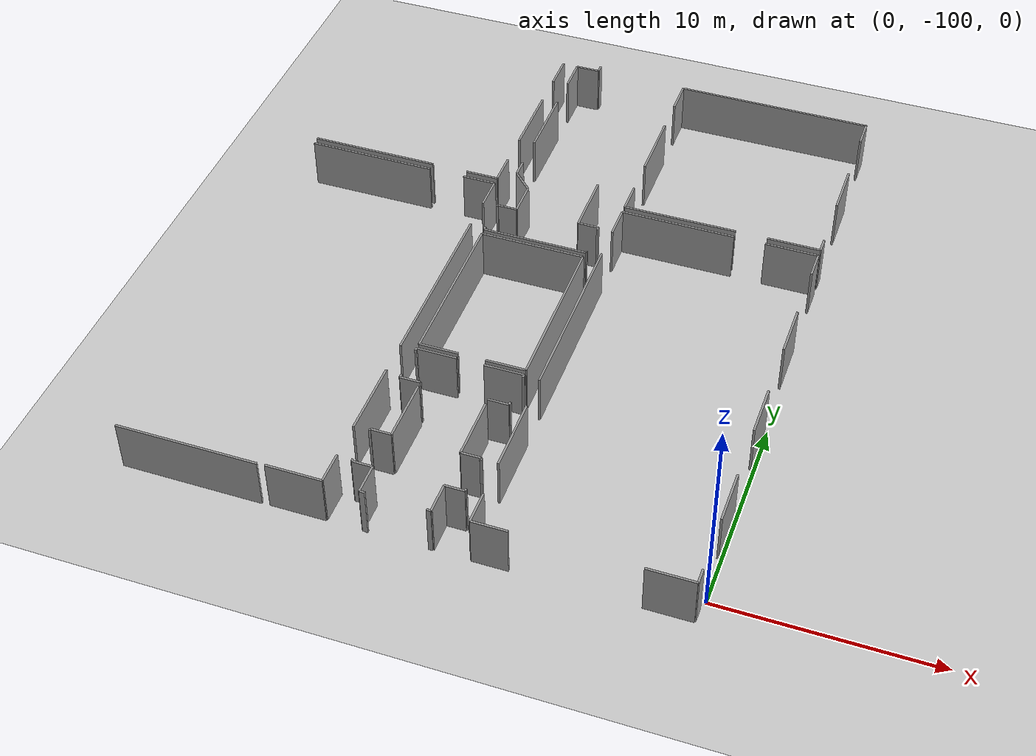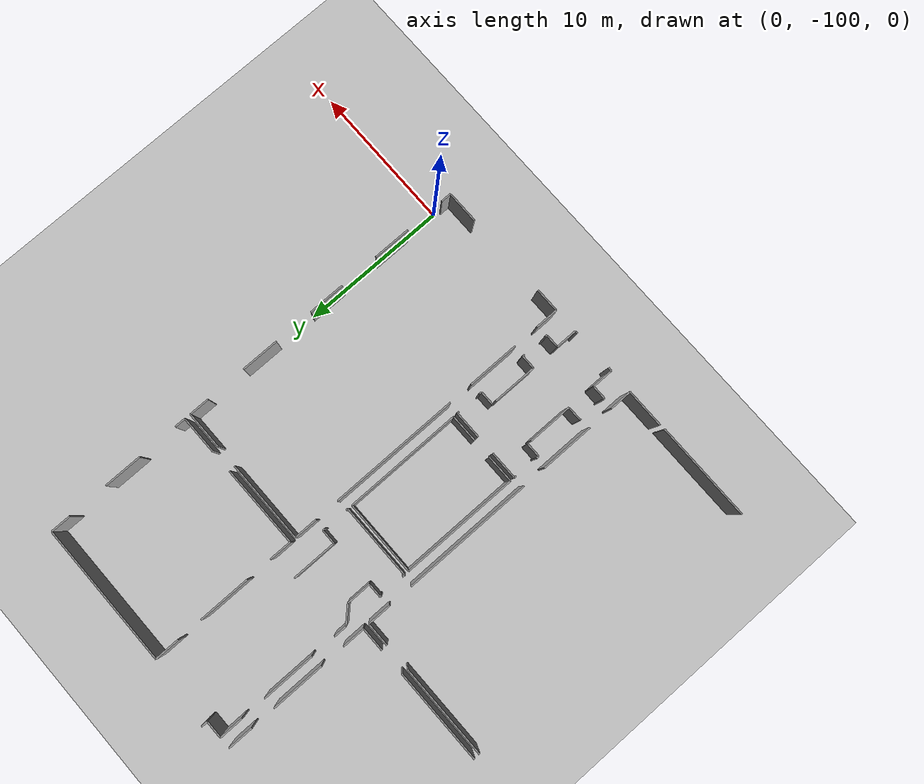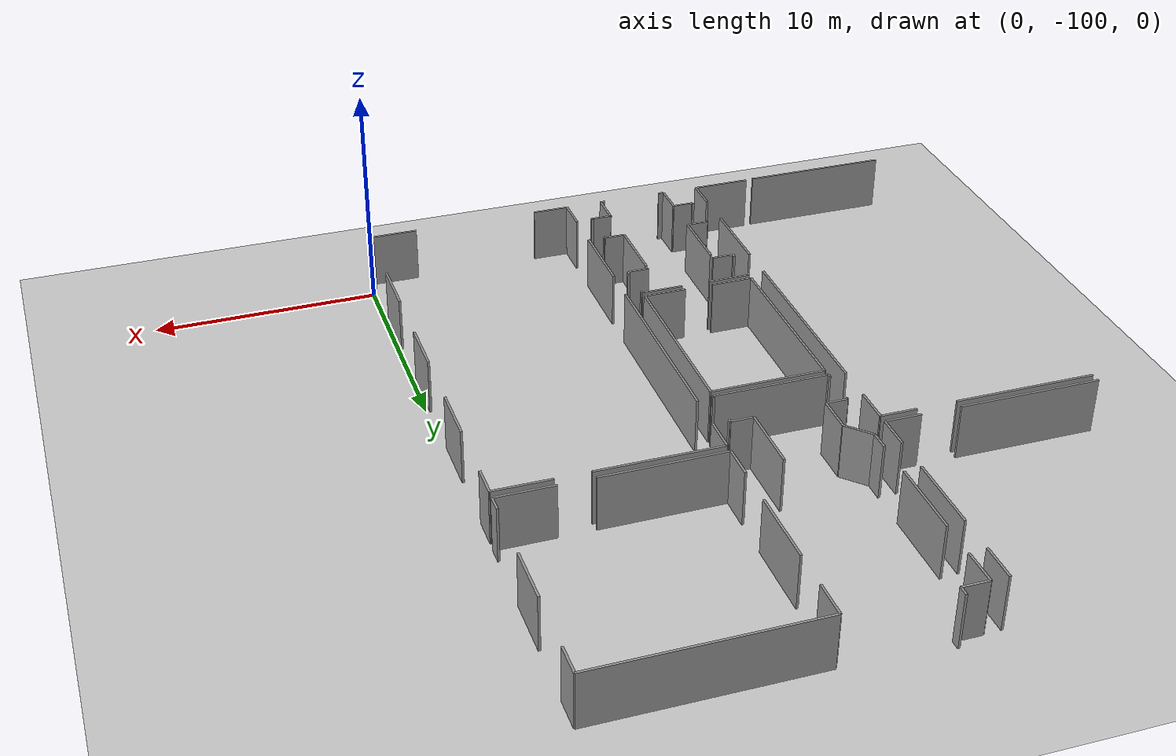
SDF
<sdf version="1.6">
 <world name="default">
  <model name="ground_plane">
   <static>1</static>
   <link name="link">
    <collision name="collision">
     <geometry><plane><normal>0 0 1</normal><size>100 100</size></plane></geometry>
     <surface><friction><ode><mu>100</mu><mu2>50</mu2></ode></friction></surface>
    </collision>
    <visual name="visual">
     <cast_shadows>0</cast_shadows>
     <geometry><plane><normal>0 0 1</normal><size>100 100</size></plane></geometry>
     <material>
      <script><uri>file://media/materials/scripts/gazebo.material</uri><name>Gazebo/Grey</name></script>
     </material>
    </visual>
   </link>
  </model>
  <model name="0510045925_40">
   <static>1</static>
   <link name="Wall_1464">
    <collision name="Wall_1464_Collision">
     <geometry><box><size>1.68219080734 0.1 2.5</size></box></geometry>
     <pose>0.84109540367 0 1.25 0 0 0</pose>
    </collision>
    <visual name="Wall_1464_Visual">
     <pose>0.84109540367 0 1.25 0 0 0</pose>
     <geometry><box><size>1.68219080734 0.1 2.5</size></box></geometry>
     <material>
      <script><uri>file://media/materials/scripts/gazebo.material</uri><name>Gazebo/Grey</name></script>
      <ambient>1 1 1 1</ambient>
     </material>
    </visual>
    <pose>117.653156011 -171.145326261 0 0 0 -1.57079632679</pose>
   </link>
   <link name="Wall_1465">
    <collision name="Wall_1465_Collision">
     <geometry><box><size>3.55879292404 0.1 2.5</size></box></geometry>
     <pose>1.77939646202 0 1.25 0 0 0</pose>
    </collision>
    <visual name="Wall_1465_Visual">
     <pose>1.77939646202 0 1.25 0 0 0</pose>
     <geometry><box><size>3.55879292404 0.1 2.5</size></box></geometry>
     <material>
      <script><uri>file://media/materials/scripts/gazebo.material</uri><name>Gazebo/Grey</name></script>
      <ambient>1 1 1 1</ambient>
     </material>
    </visual>
    <pose>117.653156011 -174.491180427 0 0 0 -1.57079632679</pose>
   </link>
   <link name="Wall_1466">
    <collision name="Wall_1466_Collision">
     <geometry><box><size>1.52737240172 0.1 2.5</size></box></geometry>
     <pose>0.763686200858 0 1.25 0 0 0</pose>
    </collision>
    <visual name="Wall_1466_Visual">
     <pose>0.763686200858 0 1.25 0 0 0</pose>
     <geometry><box><size>1.52737240172 0.1 2.5</size></box></geometry>
     <material>
      <script><uri>file://media/materials/scripts/gazebo.material</uri><name>Gazebo/Grey</name></script>
      <ambient>1 1 1 1</ambient>
     </material>
    </visual>
    <pose>117.653156011 -179.696124464 0 0 0 -1.57079632679</pose>
   </link>
   <link name="Wall_1467">
    <collision name="Wall_1467_Collision">
     <geometry><box><size>1.60021319256 0.1 2.5</size></box></geometry>
     <pose>0.800106596279 0 1.25 0 0 0</pose>
    </collision>
    <visual name="Wall_1467_Visual">
     <pose>0.800106596279 0 1.25 0 0 0</pose>
     <geometry><box><size>1.60021319256 0.1 2.5</size></box></geometry>
     <material>
      <script><uri>file://media/materials/scripts/gazebo.material</uri><name>Gazebo/Grey</name></script>
      <ambient>1 1 1 1</ambient>
     </material>
    </visual>
    <pose>117.653156011 -181.223496866 0 0 0 3.14159265359</pose>
   </link>
   <link name="Wall_1468">
    <collision name="Wall_1468_Collision">
     <geometry><box><size>6.24349635796 0.1 2.5</size></box></geometry>
     <pose>3.12174817898 0 1.25 0 0 0</pose>
    </collision>
    <visual name="Wall_1468_Visual">
     <pose>3.12174817898 0 1.25 0 0 0</pose>
     <geometry><box><size>6.24349635796 0.1 2.5</size></box></geometry>
     <material>
      <script><uri>file://media/materials/scripts/gazebo.material</uri><name>Gazebo/Grey</name></script>
      <ambient>1 1 1 1</ambient>
     </material>
    </visual>
    <pose>114.296642217 -181.223496866 0 0 0 3.14159265359</pose>
   </link>
   <link name="Wall_1469">
    <collision name="Wall_1469_Collision">
     <geometry><box><size>1.17306667343 0.1 2.5</size></box></geometry>
     <pose>0.586533336717 0 1.25 0 0 0</pose>
    </collision>
    <visual name="Wall_1469_Visual">
     <pose>0.586533336717 0 1.25 0 0 0</pose>
     <geometry><box><size>1.17306667343 0.1 2.5</size></box></geometry>
     <material>
      <script><uri>file://media/materials/scripts/gazebo.material</uri><name>Gazebo/Grey</name></script>
      <ambient>1 1 1 1</ambient>
     </material>
    </visual>
    <pose>118.4122738 -171.155985889 0 0 0 0.0</pose>
   </link>
   <link name="Wall_1470">
    <collision name="Wall_1470_Collision">
     <geometry><box><size>0.42029390117 0.1 2.5</size></box></geometry>
     <pose>0.210146950585 0 1.25 0 0 0</pose>
    </collision>
    <visual name="Wall_1470_Visual">
     <pose>0.210146950585 0 1.25 0 0 0</pose>
     <geometry><box><size>0.42029390117 0.1 2.5</size></box></geometry>
     <material>
      <script><uri>file://media/materials/scripts/gazebo.material</uri><name>Gazebo/Grey</name></script>
      <ambient>1 1 1 1</ambient>
     </material>
    </visual>
    <pose>119.585340474 -171.155985889 0 0 0 1.57079632679</pose>
   </link>
   <link name="Wall_1474">
    <collision name="Wall_1474_Collision">
     <geometry><box><size>3.02682673029 0.1 2.5</size></box></geometry>
     <pose>1.51341336514 0 1.25 0 0 0</pose>
    </collision>
    <visual name="Wall_1474_Visual">
     <pose>1.51341336514 0 1.25 0 0 0</pose>
     <geometry><box><size>3.02682673029 0.1 2.5</size></box></geometry>
     <material>
      <script><uri>file://media/materials/scripts/gazebo.material</uri><name>Gazebo/Grey</name></script>
      <ambient>1 1 1 1</ambient>
     </material>
    </visual>
    <pose>122.455064592 -180.076825461 0 0 0 -1.57079632679</pose>
   </link>
   <link name="Wall_1475">
    <collision name="Wall_1475_Collision">
     <geometry><box><size>1.00048222126 0.1 2.5</size></box></geometry>
     <pose>0.500241110632 0 1.25 0 0 0</pose>
    </collision>
    <visual name="Wall_1475_Visual">
     <pose>0.500241110632 0 1.25 0 0 0</pose>
     <geometry><box><size>1.00048222126 0.1 2.5</size></box></geometry>
     <material>
      <script><uri>file://media/materials/scripts/gazebo.material</uri><name>Gazebo/Grey</name></script>
      <ambient>1 1 1 1</ambient>
     </material>
    </visual>
    <pose>122.455064592 -183.103652192 0 0 0 0.0</pose>
   </link>
   <link name="Wall_1476">
    <collision name="Wall_1476_Collision">
     <geometry><box><size>0.158625415599 0.1 2.5</size></box></geometry>
     <pose>0.0793127077993 0 1.25 0 0 0</pose>
    </collision>
    <visual name="Wall_1476_Visual">
     <pose>0.0793127077993 0 1.25 0 0 0</pose>
     <geometry><box><size>0.158625415599 0.1 2.5</size></box></geometry>
     <material>
      <script><uri>file://media/materials/scripts/gazebo.material</uri><name>Gazebo/Grey</name></script>
      <ambient>1 1 1 1</ambient>
     </material>
    </visual>
    <pose>123.455546814 -183.103652192 0 0 0 -1.57079632679</pose>
   </link>
   <link name="Wall_1477">
    <collision name="Wall_1477_Collision">
     <geometry><box><size>0.123854724499 0.1 2.5</size></box></geometry>
     <pose>0.0619273622497 0 1.25 0 0 0</pose>
    </collision>
    <visual name="Wall_1477_Visual">
     <pose>0.0619273622497 0 1.25 0 0 0</pose>
     <geometry><box><size>0.123854724499 0.1 2.5</size></box></geometry>
     <material>
      <script><uri>file://media/materials/scripts/gazebo.material</uri><name>Gazebo/Grey</name></script>
      <ambient>1 1 1 1</ambient>
     </material>
    </visual>
    <pose>123.455546814 -184.885079059 0 0 0 -1.57079632679</pose>
   </link>
   <link name="Wall_1478">
    <collision name="Wall_1478_Collision">
     <geometry><box><size>5.06941448187 0.1 2.5</size></box></geometry>
     <pose>2.53470724093 0 1.25 0 0 0</pose>
    </collision>
    <visual name="Wall_1478_Visual">
     <pose>2.53470724093 0 1.25 0 0 0</pose>
     <geometry><box><size>5.06941448187 0.1 2.5</size></box></geometry>
     <material>
      <script><uri>file://media/materials/scripts/gazebo.material</uri><name>Gazebo/Grey</name></script>
      <ambient>1 1 1 1</ambient>
     </material>
    </visual>
    <pose>123.455546814 -185.008933783 0 0 0 3.14159265359</pose>
   </link>
   <link name="Wall_1479">
    <collision name="Wall_1479_Collision">
     <geometry><box><size>0.169031242862 0.1 2.5</size></box></geometry>
     <pose>0.0845156214309 0 1.25 0 0 0</pose>
    </collision>
    <visual name="Wall_1479_Visual">
     <pose>0.0845156214309 0 1.25 0 0 0</pose>
     <geometry><box><size>0.169031242862 0.1 2.5</size></box></geometry>
     <material>
      <script><uri>file://media/materials/scripts/gazebo.material</uri><name>Gazebo/Grey</name></script>
      <ambient>1 1 1 1</ambient>
     </material>
    </visual>
    <pose>118.386132332 -185.008933783 0 0 0 1.57079632679</pose>
   </link>
   <link name="Wall_1480">
    <collision name="Wall_1480_Collision">
     <geometry><box><size>0.0997436613284 0.1 2.5</size></box></geometry>
     <pose>0.0498718306642 0 1.25 0 0 0</pose>
    </collision>
    <visual name="Wall_1480_Visual">
     <pose>0.0498718306642 0 1.25 0 0 0</pose>
     <geometry><box><size>0.0997436613284 0.1 2.5</size></box></geometry>
     <material>
      <script><uri>file://media/materials/scripts/gazebo.material</uri><name>Gazebo/Grey</name></script>
      <ambient>1 1 1 1</ambient>
     </material>
    </visual>
    <pose>118.386132332 -183.225476511 0 0 0 1.57079632679</pose>
   </link>
   <link name="Wall_1481">
    <collision name="Wall_1481_Collision">
     <geometry><box><size>0.952513895586 0.1 2.5</size></box></geometry>
     <pose>0.476256947793 0 1.25 0 0 0</pose>
    </collision>
    <visual name="Wall_1481_Visual">
     <pose>0.476256947793 0 1.25 0 0 0</pose>
     <geometry><box><size>0.952513895586 0.1 2.5</size></box></geometry>
     <material>
      <script><uri>file://media/materials/scripts/gazebo.material</uri><name>Gazebo/Grey</name></script>
      <ambient>1 1 1 1</ambient>
     </material>
    </visual>
    <pose>118.386132332 -183.125732849 0 0 0 0.0</pose>
   </link>
   <link name="Wall_1482">
    <collision name="Wall_1482_Collision">
     <geometry><box><size>1.64589731225 0.1 2.5</size></box></geometry>
     <pose>0.822948656125 0 1.25 0 0 0</pose>
    </collision>
    <visual name="Wall_1482_Visual">
     <pose>0.822948656125 0 1.25 0 0 0</pose>
     <geometry><box><size>1.64589731225 0.1 2.5</size></box></geometry>
     <material>
      <script><uri>file://media/materials/scripts/gazebo.material</uri><name>Gazebo/Grey</name></script>
      <ambient>1 1 1 1</ambient>
     </material>
    </visual>
    <pose>119.338646227 -183.125732849 0 0 0 1.57079632679</pose>
   </link>
   <link name="Wall_1483">
    <collision name="Wall_1483_Collision">
     <geometry><box><size>1.31180980662 0.1 2.5</size></box></geometry>
     <pose>0.655904903312 0 1.25 0 0 0</pose>
    </collision>
    <visual name="Wall_1483_Visual">
     <pose>0.655904903312 0 1.25 0 0 0</pose>
     <geometry><box><size>1.31180980662 0.1 2.5</size></box></geometry>
     <material>
      <script><uri>file://media/materials/scripts/gazebo.material</uri><name>Gazebo/Grey</name></script>
      <ambient>1 1 1 1</ambient>
     </material>
    </visual>
    <pose>119.338646227 -181.479835537 0 0 0 2.34347113795</pose>
   </link>
   <link name="Wall_1484">
    <collision name="Wall_1484_Collision">
     <geometry><box><size>0.865967868836 0.1 2.5</size></box></geometry>
     <pose>0.432983934418 0 1.25 0 0 0</pose>
    </collision>
    <visual name="Wall_1484_Visual">
     <pose>0.432983934418 0 1.25 0 0 0</pose>
     <geometry><box><size>0.865967868836 0.1 2.5</size></box></geometry>
     <material>
      <script><uri>file://media/materials/scripts/gazebo.material</uri><name>Gazebo/Grey</name></script>
      <ambient>1 1 1 1</ambient>
     </material>
    </visual>
    <pose>118.422933428 -180.540519276 0 0 0 1.57079632679</pose>
   </link>
   <link name="Wall_1485">
    <collision name="Wall_1485_Collision">
     <geometry><box><size>3.5590467247 0.1 2.5</size></box></geometry>
     <pose>1.77952336235 0 1.25 0 0 0</pose>
    </collision>
    <visual name="Wall_1485_Visual">
     <pose>1.77952336235 0 1.25 0 0 0</pose>
     <geometry><box><size>3.5590467247 0.1 2.5</size></box></geometry>
     <material>
      <script><uri>file://media/materials/scripts/gazebo.material</uri><name>Gazebo/Grey</name></script>
      <ambient>1 1 1 1</ambient>
     </material>
    </visual>
    <pose>118.422933428 -177.981700972 0 0 0 1.57079632679</pose>
   </link>
   <link name="Wall_1486">
    <collision name="Wall_1486_Collision">
     <geometry><box><size>1.60913152336 0.1 2.5</size></box></geometry>
     <pose>0.80456576168 0 1.25 0 0 0</pose>
    </collision>
    <visual name="Wall_1486_Visual">
     <pose>0.80456576168 0 1.25 0 0 0</pose>
     <geometry><box><size>1.60913152336 0.1 2.5</size></box></geometry>
     <material>
      <script><uri>file://media/materials/scripts/gazebo.material</uri><name>Gazebo/Grey</name></script>
      <ambient>1 1 1 1</ambient>
     </material>
    </visual>
    <pose>118.422933428 -172.765082105 0 0 0 1.57742083557</pose>
   </link>
   <link name="Wall_1487">
    <collision name="Wall_1487_Collision">
     <geometry><box><size>2.61490825106 0.1 2.5</size></box></geometry>
     <pose>1.30745412553 0 1.25 0 0 0</pose>
    </collision>
    <visual name="Wall_1487_Visual">
     <pose>1.30745412553 0 1.25 0 0 0</pose>
     <geometry><box><size>2.61490825106 0.1 2.5</size></box></geometry>
     <material>
      <script><uri>file://media/materials/scripts/gazebo.material</uri><name>Gazebo/Grey</name></script>
      <ambient>1 1 1 1</ambient>
     </material>
    </visual>
    <pose>115.041039568 -202.100631964 0 0 0 0.0</pose>
   </link>
   <link name="Wall_1488">
    <collision name="Wall_1488_Collision">
     <geometry><box><size>1.50859115251 0.1 2.5</size></box></geometry>
     <pose>0.754295576254 0 1.25 0 0 0</pose>
    </collision>
    <visual name="Wall_1488_Visual">
     <pose>0.754295576254 0 1.25 0 0 0</pose>
     <geometry><box><size>1.50859115251 0.1 2.5</size></box></geometry>
     <material>
      <script><uri>file://media/materials/scripts/gazebo.material</uri><name>Gazebo/Grey</name></script>
      <ambient>1 1 1 1</ambient>
     </material>
    </visual>
    <pose>117.655947819 -202.100631964 0 0 0 1.57079632679</pose>
   </link>
   <link name="Wall_1489">
    <collision name="Wall_1489_Collision">
     <geometry><box><size>3.61970508363 0.1 2.5</size></box></geometry>
     <pose>1.80985254181 0 1.25 0 0 0</pose>
    </collision>
    <visual name="Wall_1489_Visual">
     <pose>1.80985254181 0 1.25 0 0 0</pose>
     <geometry><box><size>3.61970508363 0.1 2.5</size></box></geometry>
     <material>
      <script><uri>file://media/materials/scripts/gazebo.material</uri><name>Gazebo/Grey</name></script>
      <ambient>1 1 1 1</ambient>
     </material>
    </visual>
    <pose>117.655947819 -198.872795107 0 0 0 1.57079632679</pose>
   </link>
   <link name="Wall_1490">
    <collision name="Wall_1490_Collision">
     <geometry><box><size>8.78860942616 0.1 2.5</size></box></geometry>
     <pose>4.39430471308 0 1.25 0 0 0</pose>
    </collision>
    <visual name="Wall_1490_Visual">
     <pose>4.39430471308 0 1.25 0 0 0</pose>
     <geometry><box><size>8.78860942616 0.1 2.5</size></box></geometry>
     <material>
      <script><uri>file://media/materials/scripts/gazebo.material</uri><name>Gazebo/Grey</name></script>
      <ambient>1 1 1 1</ambient>
     </material>
    </visual>
    <pose>117.655947819 -193.651354027 0 0 0 1.57079632679</pose>
   </link>
   <link name="Wall_1491">
    <collision name="Wall_1491_Collision">
     <geometry><box><size>1.60452780386 0.1 2.5</size></box></geometry>
     <pose>0.802263901931 0 1.25 0 0 0</pose>
    </collision>
    <visual name="Wall_1491_Visual">
     <pose>0.802263901931 0 1.25 0 0 0</pose>
     <geometry><box><size>1.60452780386 0.1 2.5</size></box></geometry>
     <material>
      <script><uri>file://media/materials/scripts/gazebo.material</uri><name>Gazebo/Grey</name></script>
      <ambient>1 1 1 1</ambient>
     </material>
    </visual>
    <pose>117.655947819 -183.226745514 0 0 0 1.57079632679</pose>
   </link>
   <link name="Wall_1492">
    <collision name="Wall_1492_Collision">
     <geometry><box><size>1.60478160453 0.1 2.5</size></box></geometry>
     <pose>0.802390802264 0 1.25 0 0 0</pose>
    </collision>
    <visual name="Wall_1492_Visual">
     <pose>0.802390802264 0 1.25 0 0 0</pose>
     <geometry><box><size>1.60478160453 0.1 2.5</size></box></geometry>
     <material>
      <script><uri>file://media/materials/scripts/gazebo.material</uri><name>Gazebo/Grey</name></script>
      <ambient>1 1 1 1</ambient>
     </material>
    </visual>
    <pose>117.655947819 -181.62221771 0 0 0 3.14159265359</pose>
   </link>
   <link name="Wall_1493">
    <collision name="Wall_1493_Collision">
     <geometry><box><size>6.20187304891 0.1 2.5</size></box></geometry>
     <pose>3.10093652445 0 1.25 0 0 0</pose>
    </collision>
    <visual name="Wall_1493_Visual">
     <pose>3.10093652445 0 1.25 0 0 0</pose>
     <geometry><box><size>6.20187304891 0.1 2.5</size></box></geometry>
     <material>
      <script><uri>file://media/materials/scripts/gazebo.material</uri><name>Gazebo/Grey</name></script>
      <ambient>1 1 1 1</ambient>
     </material>
    </visual>
    <pose>114.284205985 -181.62221771 0 0 0 3.14159265359</pose>
   </link>
   <link name="Wall_1500">
    <collision name="Wall_1500_Collision">
     <geometry><box><size>6.61328404856 0.1 2.5</size></box></geometry>
     <pose>3.30664202428 0 1.25 0 0 0</pose>
    </collision>
    <visual name="Wall_1500_Visual">
     <pose>3.30664202428 0 1.25 0 0 0</pose>
     <geometry><box><size>6.61328404856 0.1 2.5</size></box></geometry>
     <material>
      <script><uri>file://media/materials/scripts/gazebo.material</uri><name>Gazebo/Grey</name></script>
      <ambient>1 1 1 1</ambient>
     </material>
    </visual>
    <pose>114.694347859 -202.129057638 0 0 0 3.14140076658</pose>
   </link>
   <link name="Wall_1501">
    <collision name="Wall_1501_Collision">
     <geometry><box><size>1.41468490647 0.1 2.5</size></box></geometry>
     <pose>0.707342453237 0 1.25 0 0 0</pose>
    </collision>
    <visual name="Wall_1501_Visual">
     <pose>0.707342453237 0 1.25 0 0 0</pose>
     <geometry><box><size>1.41468490647 0.1 2.5</size></box></geometry>
     <material>
      <script><uri>file://media/materials/scripts/gazebo.material</uri><name>Gazebo/Grey</name></script>
      <ambient>1 1 1 1</ambient>
     </material>
    </visual>
    <pose>119.318849775 -202.111291592 0 0 0 1.57079632679</pose>
   </link>
   <link name="Wall_1502">
    <collision name="Wall_1502_Collision">
     <geometry><box><size>0.947691682952 0.1 2.5</size></box></geometry>
     <pose>0.473845841476 0 1.25 0 0 0</pose>
    </collision>
    <visual name="Wall_1502_Visual">
     <pose>0.473845841476 0 1.25 0 0 0</pose>
     <geometry><box><size>0.947691682952 0.1 2.5</size></box></geometry>
     <material>
      <script><uri>file://media/materials/scripts/gazebo.material</uri><name>Gazebo/Grey</name></script>
      <ambient>1 1 1 1</ambient>
     </material>
    </visual>
    <pose>119.318849775 -200.696606685 0 0 0 3.14159265359</pose>
   </link>
   <link name="Wall_1503">
    <collision name="Wall_1503_Collision">
     <geometry><box><size>0.120047714525 0.1 2.5</size></box></geometry>
     <pose>0.0600238572625 0 1.25 0 0 0</pose>
    </collision>
    <visual name="Wall_1503_Visual">
     <pose>0.0600238572625 0 1.25 0 0 0</pose>
     <geometry><box><size>0.120047714525 0.1 2.5</size></box></geometry>
     <material>
      <script><uri>file://media/materials/scripts/gazebo.material</uri><name>Gazebo/Grey</name></script>
      <ambient>1 1 1 1</ambient>
     </material>
    </visual>
    <pose>118.371158092 -200.696606685 0 0 0 1.57079632679</pose>
   </link>
   <link name="Wall_1504">
    <collision name="Wall_1504_Collision">
     <geometry><box><size>0.0878150300753 0.1 2.5</size></box></geometry>
     <pose>0.0439075150377 0 1.25 0 0 0</pose>
    </collision>
    <visual name="Wall_1504_Visual">
     <pose>0.0439075150377 0 1.25 0 0 0</pose>
     <geometry><box><size>0.0878150300753 0.1 2.5</size></box></geometry>
     <material>
      <script><uri>file://media/materials/scripts/gazebo.material</uri><name>Gazebo/Grey</name></script>
      <ambient>1 1 1 1</ambient>
     </material>
    </visual>
    <pose>118.371158092 -198.834978808 0 0 0 1.57079632679</pose>
   </link>
   <link name="Wall_1505">
    <collision name="Wall_1505_Collision">
     <geometry><box><size>0.982208573386 0.1 2.5</size></box></geometry>
     <pose>0.491104286693 0 1.25 0 0 0</pose>
    </collision>
    <visual name="Wall_1505_Visual">
     <pose>0.491104286693 0 1.25 0 0 0</pose>
     <geometry><box><size>0.982208573386 0.1 2.5</size></box></geometry>
     <material>
      <script><uri>file://media/materials/scripts/gazebo.material</uri><name>Gazebo/Grey</name></script>
      <ambient>1 1 1 1</ambient>
     </material>
    </visual>
    <pose>118.371158092 -198.747163778 0 0 0 0.0</pose>
   </link>
   <link name="Wall_1506">
    <collision name="Wall_1506_Collision">
     <geometry><box><size>3.01210629172 0.1 2.5</size></box></geometry>
     <pose>1.50605314586 0 1.25 0 0 0</pose>
    </collision>
    <visual name="Wall_1506_Visual">
     <pose>1.50605314586 0 1.25 0 0 0</pose>
     <geometry><box><size>3.01210629172 0.1 2.5</size></box></geometry>
     <material>
      <script><uri>file://media/materials/scripts/gazebo.material</uri><name>Gazebo/Grey</name></script>
      <ambient>1 1 1 1</ambient>
     </material>
    </visual>
    <pose>119.353366666 -198.747163778 0 0 0 1.57079632679</pose>
   </link>
   <link name="Wall_1507">
    <collision name="Wall_1507_Collision">
     <geometry><box><size>3.01642090302 0.1 2.5</size></box></geometry>
     <pose>1.50821045151 0 1.25 0 0 0</pose>
    </collision>
    <visual name="Wall_1507_Visual">
     <pose>1.50821045151 0 1.25 0 0 0</pose>
     <geometry><box><size>3.01642090302 0.1 2.5</size></box></geometry>
     <material>
      <script><uri>file://media/materials/scripts/gazebo.material</uri><name>Gazebo/Grey</name></script>
      <ambient>1 1 1 1</ambient>
     </material>
    </visual>
    <pose>122.483744067 -195.735057486 0 0 0 -1.57079632679</pose>
   </link>
   <link name="Wall_1508">
    <collision name="Wall_1508_Collision">
     <geometry><box><size>0.943884672978 0.1 2.5</size></box></geometry>
     <pose>0.471942336489 0 1.25 0 0 0</pose>
    </collision>
    <visual name="Wall_1508_Visual">
     <pose>0.471942336489 0 1.25 0 0 0</pose>
     <geometry><box><size>0.943884672978 0.1 2.5</size></box></geometry>
     <material>
      <script><uri>file://media/materials/scripts/gazebo.material</uri><name>Gazebo/Grey</name></script>
      <ambient>1 1 1 1</ambient>
     </material>
    </visual>
    <pose>122.483744067 -198.751478389 0 0 0 0.0</pose>
   </link>
   <link name="Wall_1509">
    <collision name="Wall_1509_Collision">
     <geometry><box><size>0.132991548438 0.1 2.5</size></box></geometry>
     <pose>0.0664957742189 0 1.25 0 0 0</pose>
    </collision>
    <visual name="Wall_1509_Visual">
     <pose>0.0664957742189 0 1.25 0 0 0</pose>
     <geometry><box><size>0.132991548438 0.1 2.5</size></box></geometry>
     <material>
      <script><uri>file://media/materials/scripts/gazebo.material</uri><name>Gazebo/Grey</name></script>
      <ambient>1 1 1 1</ambient>
     </material>
    </visual>
    <pose>123.42762874 -198.751478389 0 0 0 -1.57079632679</pose>
   </link>
   <link name="Wall_1510">
    <collision name="Wall_1510_Collision">
     <geometry><box><size>0.120047714525 0.1 2.5</size></box></geometry>
     <pose>0.0600238572625 0 1.25 0 0 0</pose>
    </collision>
    <visual name="Wall_1510_Visual">
     <pose>0.0600238572625 0 1.25 0 0 0</pose>
     <geometry><box><size>0.120047714525 0.1 2.5</size></box></geometry>
     <material>
      <script><uri>file://media/materials/scripts/gazebo.material</uri><name>Gazebo/Grey</name></script>
      <ambient>1 1 1 1</ambient>
     </material>
    </visual>
    <pose>123.42762874 -200.562092333 0 0 0 -1.57079632679</pose>
   </link>
   <link name="Wall_1511">
    <collision name="Wall_1511_Collision">
     <geometry><box><size>0.928402832415 0.1 2.5</size></box></geometry>
     <pose>0.464201416208 0 1.25 0 0 0</pose>
    </collision>
    <visual name="Wall_1511_Visual">
     <pose>0.464201416208 0 1.25 0 0 0</pose>
     <geometry><box><size>0.928402832415 0.1 2.5</size></box></geometry>
     <material>
      <script><uri>file://media/materials/scripts/gazebo.material</uri><name>Gazebo/Grey</name></script>
      <ambient>1 1 1 1</ambient>
     </material>
    </visual>
    <pose>123.42762874 -200.682140047 0 0 0 3.14159265359</pose>
   </link>
   <link name="Wall_1512">
    <collision name="Wall_1512_Collision">
     <geometry><box><size>1.45097840156 0.1 2.5</size></box></geometry>
     <pose>0.725489200782 0 1.25 0 0 0</pose>
    </collision>
    <visual name="Wall_1512_Visual">
     <pose>0.725489200782 0 1.25 0 0 0</pose>
     <geometry><box><size>1.45097840156 0.1 2.5</size></box></geometry>
     <material>
      <script><uri>file://media/materials/scripts/gazebo.material</uri><name>Gazebo/Grey</name></script>
      <ambient>1 1 1 1</ambient>
     </material>
    </visual>
    <pose>122.499225908 -200.682140047 0 0 0 -1.57079632679</pose>
   </link>
   <link name="Wall_1513">
    <collision name="Wall_1513_Collision">
     <geometry><box><size>0.207101342606 0.1 2.5</size></box></geometry>
     <pose>0.103550671303 0 1.25 0 0 0</pose>
    </collision>
    <visual name="Wall_1513_Visual">
     <pose>0.103550671303 0 1.25 0 0 0</pose>
     <geometry><box><size>0.207101342606 0.1 2.5</size></box></geometry>
     <material>
      <script><uri>file://media/materials/scripts/gazebo.material</uri><name>Gazebo/Grey</name></script>
      <ambient>1 1 1 1</ambient>
     </material>
    </visual>
    <pose>122.499225908 -202.133118449 0 0 0 3.14159265359</pose>
   </link>
   <link name="Wall_1514">
    <collision name="Wall_1514_Collision">
     <geometry><box><size>0.251956064245 0.1 2.5</size></box></geometry>
     <pose>0.125978032123 0 1.25 0 0 0</pose>
    </collision>
    <visual name="Wall_1514_Visual">
     <pose>0.125978032123 0 1.25 0 0 0</pose>
     <geometry><box><size>0.251956064245 0.1 2.5</size></box></geometry>
     <material>
      <script><uri>file://media/materials/scripts/gazebo.material</uri><name>Gazebo/Grey</name></script>
      <ambient>1 1 1 1</ambient>
     </material>
    </visual>
    <pose>119.569858633 -202.133118449 0 0 0 3.05485431491</pose>
   </link>
   <link name="Wall_1515">
    <collision name="Wall_1515_Collision">
     <geometry><box><size>1.88523133931 0.1 2.5</size></box></geometry>
     <pose>0.942615669653 0 1.25 0 0 0</pose>
    </collision>
    <visual name="Wall_1515_Visual">
     <pose>0.942615669653 0 1.25 0 0 0</pose>
     <geometry><box><size>1.88523133931 0.1 2.5</size></box></geometry>
     <material>
      <script><uri>file://media/materials/scripts/gazebo.material</uri><name>Gazebo/Grey</name></script>
      <ambient>1 1 1 1</ambient>
     </material>
    </visual>
    <pose>118.400091368 -193.547549555 0 0 0 0.0</pose>
   </link>
   <link name="Wall_1516">
    <collision name="Wall_1516_Collision">
     <geometry><box><size>1.87127230273 0.1 2.5</size></box></geometry>
     <pose>0.935636151367 0 1.25 0 0 0</pose>
    </collision>
    <visual name="Wall_1516_Visual">
     <pose>0.935636151367 0 1.25 0 0 0</pose>
     <geometry><box><size>1.87127230273 0.1 2.5</size></box></geometry>
     <material>
      <script><uri>file://media/materials/scripts/gazebo.material</uri><name>Gazebo/Grey</name></script>
      <ambient>1 1 1 1</ambient>
     </material>
    </visual>
    <pose>121.57640669 -193.547549555 0 0 0 0.0</pose>
   </link>
   <link name="Wall_1517">
    <collision name="Wall_1517_Collision">
     <geometry><box><size>0.14898099033 0.1 2.5</size></box></geometry>
     <pose>0.0744904951651 0 1.25 0 0 0</pose>
    </collision>
    <visual name="Wall_1517_Visual">
     <pose>0.0744904951651 0 1.25 0 0 0</pose>
     <geometry><box><size>0.14898099033 0.1 2.5</size></box></geometry>
     <material>
      <script><uri>file://media/materials/scripts/gazebo.material</uri><name>Gazebo/Grey</name></script>
      <ambient>1 1 1 1</ambient>
     </material>
    </visual>
    <pose>123.447678993 -193.547549555 0 0 0 -1.57079632679</pose>
   </link>
   <link name="Wall_1518">
    <collision name="Wall_1518_Collision">
     <geometry><box><size>0.161417222913 0.1 2.5</size></box></geometry>
     <pose>0.0807086114566 0 1.25 0 0 0</pose>
    </collision>
    <visual name="Wall_1518_Visual">
     <pose>0.0807086114566 0 1.25 0 0 0</pose>
     <geometry><box><size>0.161417222913 0.1 2.5</size></box></geometry>
     <material>
      <script><uri>file://media/materials/scripts/gazebo.material</uri><name>Gazebo/Grey</name></script>
      <ambient>1 1 1 1</ambient>
     </material>
    </visual>
    <pose>123.447678993 -195.302834953 0 0 0 -1.57079632679</pose>
   </link>
   <link name="Wall_1519">
    <collision name="Wall_1519_Collision">
     <geometry><box><size>0.987792188016 0.1 2.5</size></box></geometry>
     <pose>0.493896094008 0 1.25 0 0 0</pose>
    </collision>
    <visual name="Wall_1519_Visual">
     <pose>0.493896094008 0 1.25 0 0 0</pose>
     <geometry><box><size>0.987792188016 0.1 2.5</size></box></geometry>
     <material>
      <script><uri>file://media/materials/scripts/gazebo.material</uri><name>Gazebo/Grey</name></script>
      <ambient>1 1 1 1</ambient>
     </material>
    </visual>
    <pose>123.447678993 -195.464252176 0 0 0 3.14159265359</pose>
   </link>
   <link name="Wall_1520">
    <collision name="Wall_1520_Collision">
     <geometry><box><size>0.975355955433 0.1 2.5</size></box></geometry>
     <pose>0.487677977716 0 1.25 0 0 0</pose>
    </collision>
    <visual name="Wall_1520_Visual">
     <pose>0.487677977716 0 1.25 0 0 0</pose>
     <geometry><box><size>0.975355955433 0.1 2.5</size></box></geometry>
     <material>
      <script><uri>file://media/materials/scripts/gazebo.material</uri><name>Gazebo/Grey</name></script>
      <ambient>1 1 1 1</ambient>
     </material>
    </visual>
    <pose>119.363011091 -195.464252176 0 0 0 3.14159265359</pose>
   </link>
   <link name="Wall_1521">
    <collision name="Wall_1521_Collision">
     <geometry><box><size>0.170300246187 0.1 2.5</size></box></geometry>
     <pose>0.0851501230933 0 1.25 0 0 0</pose>
    </collision>
    <visual name="Wall_1521_Visual">
     <pose>0.0851501230933 0 1.25 0 0 0</pose>
     <geometry><box><size>0.170300246187 0.1 2.5</size></box></geometry>
     <material>
      <script><uri>file://media/materials/scripts/gazebo.material</uri><name>Gazebo/Grey</name></script>
      <ambient>1 1 1 1</ambient>
     </material>
    </visual>
    <pose>118.387655136 -195.464252176 0 0 0 1.57079632679</pose>
   </link>
   <link name="Wall_1522">
    <collision name="Wall_1522_Collision">
     <geometry><box><size>0.128518652384 0.1 2.5</size></box></geometry>
     <pose>0.0642593261922 0 1.25 0 0 0</pose>
    </collision>
    <visual name="Wall_1522_Visual">
     <pose>0.0642593261922 0 1.25 0 0 0</pose>
     <geometry><box><size>0.128518652384 0.1 2.5</size></box></geometry>
     <material>
      <script><uri>file://media/materials/scripts/gazebo.material</uri><name>Gazebo/Grey</name></script>
      <ambient>1 1 1 1</ambient>
     </material>
    </visual>
    <pose>118.387655136 -193.67546509 0 0 0 1.473878699</pose>
   </link>
   <link name="Wall_1523">
    <collision name="Wall_1523_Collision">
     <geometry><box><size>7.93177838126 0.1 2.5</size></box></geometry>
     <pose>3.96588919063 0 1.25 0 0 0</pose>
    </collision>
    <visual name="Wall_1523_Visual">
     <pose>3.96588919063 0 1.25 0 0 0</pose>
     <geometry><box><size>7.93177838126 0.1 2.5</size></box></geometry>
     <material>
      <script><uri>file://media/materials/scripts/gazebo.material</uri><name>Gazebo/Grey</name></script>
      <ambient>1 1 1 1</ambient>
     </material>
    </visual>
    <pose>118.404152179 -193.258724398 0 0 0 1.57079632679</pose>
   </link>
   <link name="Wall_1524">
    <collision name="Wall_1524_Collision">
     <geometry><box><size>5.02347656151 0.1 2.5</size></box></geometry>
     <pose>2.51173828075 0 1.25 0 0 0</pose>
    </collision>
    <visual name="Wall_1524_Visual">
     <pose>2.51173828075 0 1.25 0 0 0</pose>
     <geometry><box><size>5.02347656151 0.1 2.5</size></box></geometry>
     <material>
      <script><uri>file://media/materials/scripts/gazebo.material</uri><name>Gazebo/Grey</name></script>
      <ambient>1 1 1 1</ambient>
     </material>
    </visual>
    <pose>118.404152179 -185.326946017 0 0 0 0.0</pose>
   </link>
   <link name="Wall_1525">
    <collision name="Wall_1525_Collision">
     <geometry><box><size>7.92264155732 0.1 2.5</size></box></geometry>
     <pose>3.96132077866 0 1.25 0 0 0</pose>
    </collision>
    <visual name="Wall_1525_Visual">
     <pose>3.96132077866 0 1.25 0 0 0</pose>
     <geometry><box><size>7.92264155732 0.1 2.5</size></box></geometry>
     <material>
      <script><uri>file://media/materials/scripts/gazebo.material</uri><name>Gazebo/Grey</name></script>
      <ambient>1 1 1 1</ambient>
     </material>
    </visual>
    <pose>123.42762874 -185.326946017 0 0 0 -1.57079632679</pose>
   </link>
   <link name="Wall_1526">
    <collision name="Wall_1526_Collision">
     <geometry><box><size>1.88827694729 0.1 2.5</size></box></geometry>
     <pose>0.944138473643 0 1.25 0 0 0</pose>
    </collision>
    <visual name="Wall_1526_Visual">
     <pose>0.944138473643 0 1.25 0 0 0</pose>
     <geometry><box><size>1.88827694729 0.1 2.5</size></box></geometry>
     <material>
      <script><uri>file://media/materials/scripts/gazebo.material</uri><name>Gazebo/Grey</name></script>
      <ambient>1 1 1 1</ambient>
     </material>
    </visual>
    <pose>123.42762874 -193.249587574 0 0 0 3.14159265359</pose>
   </link>
   <link name="Wall_1527">
    <collision name="Wall_1527_Collision">
     <geometry><box><size>1.85225978805 0.1 2.5</size></box></geometry>
     <pose>0.926129894027 0 1.25 0 0 0</pose>
    </collision>
    <visual name="Wall_1527_Visual">
     <pose>0.926129894027 0 1.25 0 0 0</pose>
     <geometry><box><size>1.85225978805 0.1 2.5</size></box></geometry>
     <material>
      <script><uri>file://media/materials/scripts/gazebo.material</uri><name>Gazebo/Grey</name></script>
      <ambient>1 1 1 1</ambient>
     </material>
    </visual>
    <pose>120.256389432 -193.249587574 0 0 0 -3.13665983528</pose>
   </link>
   <link name="Wall_1528">
    <collision name="Wall_1528_Collision">
     <geometry><box><size>1.54970686023 0.1 2.5</size></box></geometry>
     <pose>0.774853430116 0 1.25 0 0 0</pose>
    </collision>
    <visual name="Wall_1528_Visual">
     <pose>0.774853430116 0 1.25 0 0 0</pose>
     <geometry><box><size>1.54970686023 0.1 2.5</size></box></geometry>
     <material>
      <script><uri>file://media/materials/scripts/gazebo.material</uri><name>Gazebo/Grey</name></script>
      <ambient>1 1 1 1</ambient>
     </material>
    </visual>
    <pose>124.183954722 -202.128550037 0 0 0 1.57079632679</pose>
   </link>
   <link name="Wall_1529">
    <collision name="Wall_1529_Collision">
     <geometry><box><size>3.53620466486 0.1 2.5</size></box></geometry>
     <pose>1.76810233243 0 1.25 0 0 0</pose>
    </collision>
    <visual name="Wall_1529_Visual">
     <pose>1.76810233243 0 1.25 0 0 0</pose>
     <geometry><box><size>3.53620466486 0.1 2.5</size></box></geometry>
     <material>
      <script><uri>file://media/materials/scripts/gazebo.material</uri><name>Gazebo/Grey</name></script>
      <ambient>1 1 1 1</ambient>
     </material>
    </visual>
    <pose>124.183954722 -198.81695896 0 0 0 1.57079632679</pose>
   </link>
   <link name="Wall_1530">
    <collision name="Wall_1530_Collision">
     <geometry><box><size>8.812212888 0.1 2.5</size></box></geometry>
     <pose>4.406106444 0 1.25 0 0 0</pose>
    </collision>
    <visual name="Wall_1530_Visual">
     <pose>4.406106444 0 1.25 0 0 0</pose>
     <geometry><box><size>8.812212888 0.1 2.5</size></box></geometry>
     <material>
      <script><uri>file://media/materials/scripts/gazebo.material</uri><name>Gazebo/Grey</name></script>
      <ambient>1 1 1 1</ambient>
     </material>
    </visual>
    <pose>124.183954722 -193.651100226 0 0 0 1.57079632679</pose>
   </link>
   <link name="Wall_1531">
    <collision name="Wall_1531_Collision">
     <geometry><box><size>1.60173599655 0.1 2.5</size></box></geometry>
     <pose>0.800867998274 0 1.25 0 0 0</pose>
    </collision>
    <visual name="Wall_1531_Visual">
     <pose>0.800867998274 0 1.25 0 0 0</pose>
     <geometry><box><size>1.60173599655 0.1 2.5</size></box></geometry>
     <material>
      <script><uri>file://media/materials/scripts/gazebo.material</uri><name>Gazebo/Grey</name></script>
      <ambient>1 1 1 1</ambient>
     </material>
    </visual>
    <pose>124.183954722 -183.223953707 0 0 0 1.57079632679</pose>
   </link>
   <link name="Wall_1532">
    <collision name="Wall_1532_Collision">
     <geometry><box><size>5.52168726682 0.1 2.5</size></box></geometry>
     <pose>2.76084363341 0 1.25 0 0 0</pose>
    </collision>
    <visual name="Wall_1532_Visual">
     <pose>2.76084363341 0 1.25 0 0 0</pose>
     <geometry><box><size>5.52168726682 0.1 2.5</size></box></geometry>
     <material>
      <script><uri>file://media/materials/scripts/gazebo.material</uri><name>Gazebo/Grey</name></script>
      <ambient>1 1 1 1</ambient>
     </material>
    </visual>
    <pose>124.183954722 -181.62221771 0 0 0 0.0</pose>
   </link>
   <link name="Wall_1533">
    <collision name="Wall_1533_Collision">
     <geometry><box><size>2.54257506155 0.1 2.5</size></box></geometry>
     <pose>1.27128753077 0 1.25 0 0 0</pose>
    </collision>
    <visual name="Wall_1533_Visual">
     <pose>1.27128753077 0 1.25 0 0 0</pose>
     <geometry><box><size>2.54257506155 0.1 2.5</size></box></geometry>
     <material>
      <script><uri>file://media/materials/scripts/gazebo.material</uri><name>Gazebo/Grey</name></script>
      <ambient>1 1 1 1</ambient>
     </material>
    </visual>
    <pose>131.216771148 -181.62221771 0 0 0 0.0</pose>
   </link>
   <link name="Wall_1534">
    <collision name="Wall_1534_Collision">
     <geometry><box><size>1.36138676683 0.1 2.5</size></box></geometry>
     <pose>0.680693383417 0 1.25 0 0 0</pose>
    </collision>
    <visual name="Wall_1534_Visual">
     <pose>0.680693383417 0 1.25 0 0 0</pose>
     <geometry><box><size>1.36138676683 0.1 2.5</size></box></geometry>
     <material>
      <script><uri>file://media/materials/scripts/gazebo.material</uri><name>Gazebo/Grey</name></script>
      <ambient>1 1 1 1</ambient>
     </material>
    </visual>
    <pose>133.759346209 -181.62221771 0 0 0 -1.57079632679</pose>
   </link>
   <link name="Wall_1535">
    <collision name="Wall_1535_Collision">
     <geometry><box><size>2.56668612472 0.1 2.5</size></box></geometry>
     <pose>1.28334306236 0 1.25 0 0 0</pose>
    </collision>
    <visual name="Wall_1535_Visual">
     <pose>1.28334306236 0 1.25 0 0 0</pose>
     <geometry><box><size>2.56668612472 0.1 2.5</size></box></geometry>
     <material>
      <script><uri>file://media/materials/scripts/gazebo.material</uri><name>Gazebo/Grey</name></script>
      <ambient>1 1 1 1</ambient>
     </material>
    </visual>
    <pose>133.759346209 -185.707139413 0 0 0 -1.57079632679</pose>
   </link>
   <link name="Wall_1536">
    <collision name="Wall_1536_Collision">
     <geometry><box><size>2.48597751326 0.1 2.5</size></box></geometry>
     <pose>1.24298875663 0 1.25 0 0 0</pose>
    </collision>
    <visual name="Wall_1536_Visual">
     <pose>1.24298875663 0 1.25 0 0 0</pose>
     <geometry><box><size>2.48597751326 0.1 2.5</size></box></geometry>
     <material>
      <script><uri>file://media/materials/scripts/gazebo.material</uri><name>Gazebo/Grey</name></script>
      <ambient>1 1 1 1</ambient>
     </material>
    </visual>
    <pose>133.759346209 -190.97324941 0 0 0 -1.57079632679</pose>
   </link>
   <link name="Wall_1537">
    <collision name="Wall_1537_Collision">
     <geometry><box><size>2.56161011142 0.1 2.5</size></box></geometry>
     <pose>1.28080505571 0 1.25 0 0 0</pose>
    </collision>
    <visual name="Wall_1537_Visual">
     <pose>1.28080505571 0 1.25 0 0 0</pose>
     <geometry><box><size>2.56161011142 0.1 2.5</size></box></geometry>
     <material>
      <script><uri>file://media/materials/scripts/gazebo.material</uri><name>Gazebo/Grey</name></script>
      <ambient>1 1 1 1</ambient>
     </material>
    </visual>
    <pose>133.759346209 -196.121595899 0 0 0 -1.57079632679</pose>
   </link>
   <link name="Wall_1538">
    <collision name="Wall_1538_Collision">
     <geometry><box><size>0.707342453237 0.1 2.5</size></box></geometry>
     <pose>0.353671226619 0 1.25 0 0 0</pose>
    </collision>
    <visual name="Wall_1538_Visual">
     <pose>0.353671226619 0 1.25 0 0 0</pose>
     <geometry><box><size>0.707342453237 0.1 2.5</size></box></geometry>
     <material>
      <script><uri>file://media/materials/scripts/gazebo.material</uri><name>Gazebo/Grey</name></script>
      <ambient>1 1 1 1</ambient>
     </material>
    </visual>
    <pose>133.759346209 -201.421207584 0 0 0 -1.57079632679</pose>
   </link>
   <link name="Wall_1539">
    <collision name="Wall_1539_Collision">
     <geometry><box><size>2.20172076851 0.1 2.5</size></box></geometry>
     <pose>1.10086038425 0 1.25 0 0 0</pose>
    </collision>
    <visual name="Wall_1539_Visual">
     <pose>1.10086038425 0 1.25 0 0 0</pose>
     <geometry><box><size>2.20172076851 0.1 2.5</size></box></geometry>
     <material>
      <script><uri>file://media/materials/scripts/gazebo.material</uri><name>Gazebo/Grey</name></script>
      <ambient>1 1 1 1</ambient>
     </material>
    </visual>
    <pose>133.759346209 -202.128550037 0 0 0 3.14159265359</pose>
   </link>
   <link name="Wall_1540">
    <collision name="Wall_1540_Collision">
     <geometry><box><size>1.64462830893 0.1 2.5</size></box></geometry>
     <pose>0.822314154463 0 1.25 0 0 0</pose>
    </collision>
    <visual name="Wall_1540_Visual">
     <pose>0.822314154463 0 1.25 0 0 0</pose>
     <geometry><box><size>1.64462830893 0.1 2.5</size></box></geometry>
     <material>
      <script><uri>file://media/materials/scripts/gazebo.material</uri><name>Gazebo/Grey</name></script>
      <ambient>1 1 1 1</ambient>
     </material>
    </visual>
    <pose>125.828583031 -202.128550037 0 0 0 3.14159265359</pose>
   </link>
   <link name="Wall_1541">
    <collision name="Wall_1541_Collision">
     <geometry><box><size>1.50554554453 0.1 2.5</size></box></geometry>
     <pose>0.752772772265 0 1.25 0 0 0</pose>
    </collision>
    <visual name="Wall_1541_Visual">
     <pose>0.752772772265 0 1.25 0 0 0</pose>
     <geometry><box><size>1.50554554453 0.1 2.5</size></box></geometry>
     <material>
      <script><uri>file://media/materials/scripts/gazebo.material</uri><name>Gazebo/Grey</name></script>
      <ambient>1 1 1 1</ambient>
     </material>
    </visual>
    <pose>124.184969925 -181.239486307 0 0 0 1.57079632679</pose>
   </link>
   <link name="Wall_1542">
    <collision name="Wall_1542_Collision">
     <geometry><box><size>3.46514047867 0.1 2.5</size></box></geometry>
     <pose>1.73257023933 0 1.25 0 0 0</pose>
    </collision>
    <visual name="Wall_1542_Visual">
     <pose>1.73257023933 0 1.25 0 0 0</pose>
     <geometry><box><size>3.46514047867 0.1 2.5</size></box></geometry>
     <material>
      <script><uri>file://media/materials/scripts/gazebo.material</uri><name>Gazebo/Grey</name></script>
      <ambient>1 1 1 1</ambient>
     </material>
    </visual>
    <pose>124.184969925 -177.969010939 0 0 0 1.57079632679</pose>
   </link>
   <link name="Wall_1543">
    <collision name="Wall_1543_Collision">
     <geometry><box><size>1.64742011624 0.1 2.5</size></box></geometry>
     <pose>0.82371005812 0 1.25 0 0 0</pose>
    </collision>
    <visual name="Wall_1543_Visual">
     <pose>0.82371005812 0 1.25 0 0 0</pose>
     <geometry><box><size>1.64742011624 0.1 2.5</size></box></geometry>
     <material>
      <script><uri>file://media/materials/scripts/gazebo.material</uri><name>Gazebo/Grey</name></script>
      <ambient>1 1 1 1</ambient>
     </material>
    </visual>
    <pose>124.184969925 -172.801121799 0 0 0 1.57079632679</pose>
   </link>
   <link name="Wall_1544">
    <collision name="Wall_1544_Collision">
     <geometry><box><size>9.58884292277 0.1 2.5</size></box></geometry>
     <pose>4.79442146138 0 1.25 0 0 0</pose>
    </collision>
    <visual name="Wall_1544_Visual">
     <pose>4.79442146138 0 1.25 0 0 0</pose>
     <geometry><box><size>9.58884292277 0.1 2.5</size></box></geometry>
     <material>
      <script><uri>file://media/materials/scripts/gazebo.material</uri><name>Gazebo/Grey</name></script>
      <ambient>1 1 1 1</ambient>
     </material>
    </visual>
    <pose>124.184969925 -171.153701683 0 0 0 0.0</pose>
   </link>
   <link name="Wall_1545">
    <collision name="Wall_1545_Collision">
     <geometry><box><size>1.36519377681 0.1 2.5</size></box></geometry>
     <pose>0.682596888404 0 1.25 0 0 0</pose>
    </collision>
    <visual name="Wall_1545_Visual">
     <pose>0.682596888404 0 1.25 0 0 0</pose>
     <geometry><box><size>1.36519377681 0.1 2.5</size></box></geometry>
     <material>
      <script><uri>file://media/materials/scripts/gazebo.material</uri><name>Gazebo/Grey</name></script>
      <ambient>1 1 1 1</ambient>
     </material>
    </visual>
    <pose>133.773812847 -171.153701683 0 0 0 -1.57079632679</pose>
   </link>
   <link name="Wall_1546">
    <collision name="Wall_1546_Collision">
     <geometry><box><size>2.56617852339 0.1 2.5</size></box></geometry>
     <pose>1.28308926169 0 1.25 0 0 0</pose>
    </collision>
    <visual name="Wall_1546_Visual">
     <pose>1.28308926169 0 1.25 0 0 0</pose>
     <geometry><box><size>2.56617852339 0.1 2.5</size></box></geometry>
     <material>
      <script><uri>file://media/materials/scripts/gazebo.material</uri><name>Gazebo/Grey</name></script>
      <ambient>1 1 1 1</ambient>
     </material>
    </visual>
    <pose>133.773812847 -175.216796528 0 0 0 -1.57079632679</pose>
   </link>
   <link name="Wall_1547">
    <collision name="Wall_1547_Collision">
     <geometry><box><size>0.734245323723 0.1 2.5</size></box></geometry>
     <pose>0.367122661861 0 1.25 0 0 0</pose>
    </collision>
    <visual name="Wall_1547_Visual">
     <pose>0.367122661861 0 1.25 0 0 0</pose>
     <geometry><box><size>0.734245323723 0.1 2.5</size></box></geometry>
     <material>
      <script><uri>file://media/materials/scripts/gazebo.material</uri><name>Gazebo/Grey</name></script>
      <ambient>1 1 1 1</ambient>
     </material>
    </visual>
    <pose>133.773812847 -180.477576711 0 0 0 -1.57079632679</pose>
   </link>
   <link name="Wall_1548">
    <collision name="Wall_1548_Collision">
     <geometry><box><size>2.55729550011 0.1 2.5</size></box></geometry>
     <pose>1.27864775006 0 1.25 0 0 0</pose>
    </collision>
    <visual name="Wall_1548_Visual">
     <pose>1.27864775006 0 1.25 0 0 0</pose>
     <geometry><box><size>2.55729550011 0.1 2.5</size></box></geometry>
     <material>
      <script><uri>file://media/materials/scripts/gazebo.material</uri><name>Gazebo/Grey</name></script>
      <ambient>1 1 1 1</ambient>
     </material>
    </visual>
    <pose>133.773812847 -181.211822035 0 0 0 3.14159265359</pose>
   </link>
   <link name="Wall_1549">
    <collision name="Wall_1549_Collision">
     <geometry><box><size>5.48064137911 0.1 2.5</size></box></geometry>
     <pose>2.74032068955 0 1.25 0 0 0</pose>
    </collision>
    <visual name="Wall_1549_Visual">
     <pose>2.74032068955 0 1.25 0 0 0</pose>
     <geometry><box><size>5.48064137911 0.1 2.5</size></box></geometry>
     <material>
      <script><uri>file://media/materials/scripts/gazebo.material</uri><name>Gazebo/Grey</name></script>
      <ambient>1 1 1 1</ambient>
     </material>
    </visual>
    <pose>129.665541484 -181.211822035 0 0 0 -3.13654499802</pose>
   </link>
   <pose>-133.95 101.083118449 0 0 0 0</pose>
  </model>
 </world>
</sdf>
